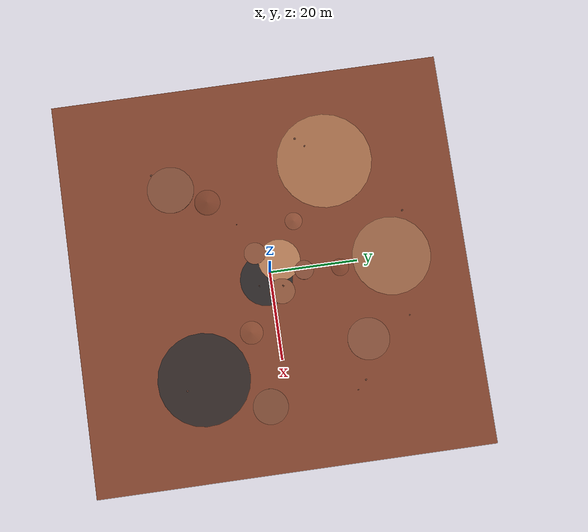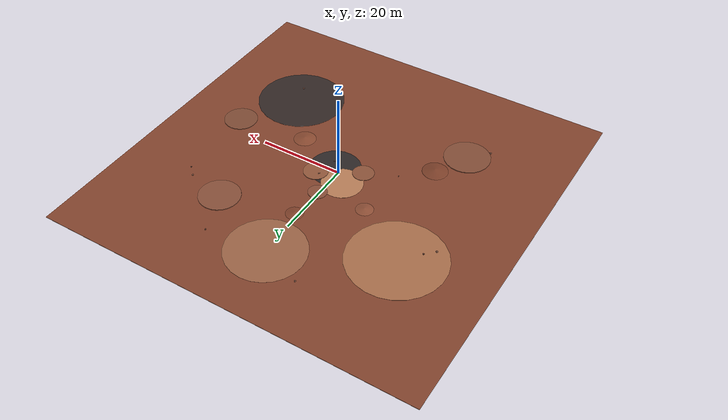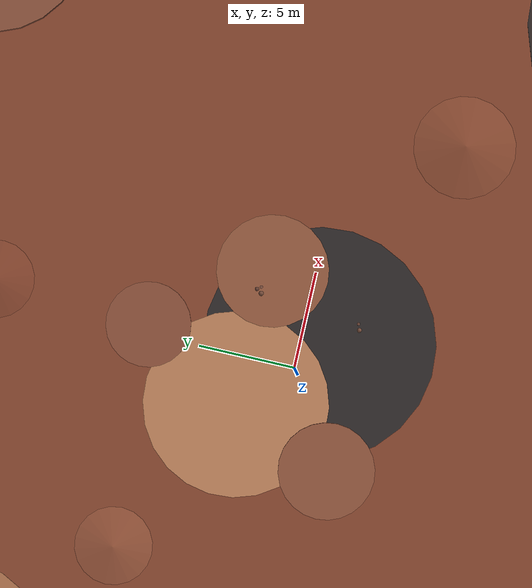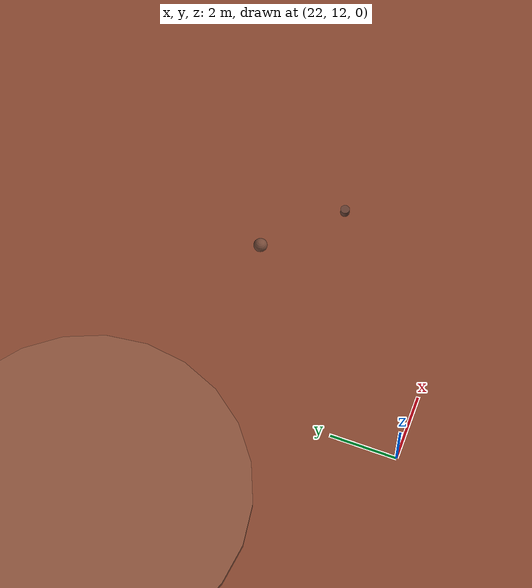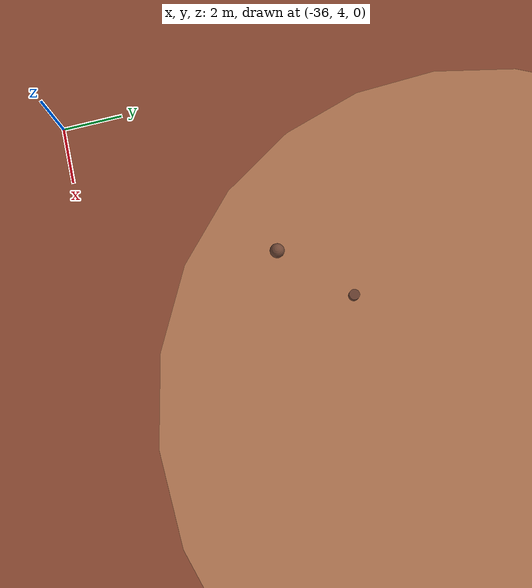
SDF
<sdf version="1.6">
  <world name="mars_world">
    <gravity>0 0 -3.72</gravity>

    <include>
      <uri>model://sun</uri>
    </include>

    <scene>
      <ambient>0.26 0.15 0.12 1</ambient>
      <background>0.18 0.11 0.09 1</background>
      <shadows>true</shadows>
      <fog>
        <type>linear</type>
        <color>0.30 0.18 0.14 1</color>
        <start>6.0</start>
        <end>42.0</end>
        <density>0.01</density>
      </fog>
      <sky>
        <clouds>false</clouds>
      </sky>
    </scene>

    <physics name="mars_physics" type="ode">
      <real_time_factor>1.0</real_time_factor>
      <max_step_size>0.001</max_step_size>
      <real_time_update_rate>1000</real_time_update_rate>
    </physics>

    <model name="mars_terrain_base">
      <static>true</static>
      <pose>0 0 -0.08 0 0 0</pose>
      <link name="terrain_link">
        <collision name="collision">
          <geometry>
            <box>
              <size>90 90 0.12</size>
            </box>
          </geometry>
          <surface>
            <friction>
              <ode>
                <mu>1.2</mu>
                <mu2>1.2</mu2>
              </ode>
            </friction>
          </surface>
        </collision>
        <visual name="visual">
          <geometry>
            <box>
              <size>90 90 0.12</size>
            </box>
          </geometry>
          <material>
            <ambient>0.34 0.18 0.12 1</ambient>
            <diffuse>0.52 0.27 0.18 1</diffuse>
            <specular>0.02 0.02 0.02 1</specular>
          </material>
        </visual>
      </link>
    </model>

    <model name="dune_mound_01">
      <static>true</static>
      <pose>-11 7 -7.9 0 0 0</pose>
      <link name="link">
        <collision name="c"><geometry><sphere><radius>8.2</radius></sphere></geometry></collision>
        <visual name="v"><geometry><sphere><radius>8.2</radius></sphere></geometry><material><diffuse>0.56 0.31 0.21 1</diffuse></material></visual>
      </link>
    </model>

    <model name="dune_mound_02">
      <static>true</static>
      <pose>13 -6 -8.5 0 0 0</pose>
      <link name="link">
        <collision name="c"><geometry><sphere><radius>8.9</radius></sphere></geometry></collision>
        <visual name="v"><geometry><sphere><radius>8.9</radius></sphere></geometry><material><diffuse>0.54 0.29 0.19 1</diffuse></material></visual>
      </link>
    </model>

    <model name="dune_mound_03">
      <static>true</static>
      <pose>1 16 -9.7 0 0 0</pose>
      <link name="link">
        <collision name="c"><geometry><sphere><radius>10.0</radius></sphere></geometry></collision>
        <visual name="v"><geometry><sphere><radius>10.0</radius></sphere></geometry><material><diffuse>0.51 0.26 0.17 1</diffuse></material></visual>
      </link>
    </model>

    <model name="dune_mound_04">
      <static>true</static>
      <pose>-18 -12 -8.7 0 0 0</pose>
      <link name="link">
        <collision name="c"><geometry><sphere><radius>9.2</radius></sphere></geometry></collision>
        <visual name="v"><geometry><sphere><radius>9.2</radius></sphere></geometry><material><diffuse>0.49 0.25 0.16 1</diffuse></material></visual>
      </link>
    </model>

    <light name="mars_key" type="directional">
      <cast_shadows>true</cast_shadows>
      <pose>0 0 60 0.35 -0.1 0.0</pose>
      <diffuse>0.80 0.46 0.33 1</diffuse>
      <specular>0.05 0.03 0.02 1</specular>
      <attenuation>
        <range>500</range>
        <constant>0.97</constant>
        <linear>0.004</linear>
        <quadratic>0.0002</quadratic>
      </attenuation>
      <direction>-0.55 0.20 -0.82</direction>
    </light>

    <light name="mars_fill" type="directional">
      <cast_shadows>false</cast_shadows>
      <pose>0 0 35 0.15 0.05 0.0</pose>
      <diffuse>0.14 0.08 0.06 1</diffuse>
      <specular>0 0 0 1</specular>
      <attenuation>
        <range>500</range>
        <constant>1.0</constant>
        <linear>0.0</linear>
        <quadratic>0.0</quadratic>
      </attenuation>
      <direction>-0.20 0.05 -1.0</direction>
    </light>

    <model name="basalt_patch_01">
      <static>true</static>
      <pose>1.5 -1.0 -0.010 0 0 0.2</pose>
      <link name="link">
        <collision name="c"><geometry><cylinder><radius>6.0</radius><length>0.02</length></cylinder></geometry></collision>
        <visual name="v"><geometry><cylinder><radius>6.0</radius><length>0.02</length></cylinder></geometry><material><diffuse>0.18 0.16 0.16 1</diffuse></material></visual>
      </link>
    </model>

    <model name="dust_patch_01">
      <static>true</static>
      <pose>-2.5 2.5 -0.009 0 0 0.45</pose>
      <link name="link">
        <collision name="c"><geometry><cylinder><radius>4.8</radius><length>0.02</length></cylinder></geometry></collision>
        <visual name="v"><geometry><cylinder><radius>4.8</radius><length>0.02</length></cylinder></geometry><material><diffuse>0.73 0.50 0.35 1</diffuse></material></visual>
      </link>
    </model>

    <model name="crater_01_rim">
      <static>true</static>
      <pose>4.6 2.2 0.05 0 0 0</pose>
      <link name="link">
        <collision name="c"><geometry><cylinder><radius>2.9</radius><length>0.16</length></cylinder></geometry></collision>
        <visual name="v"><geometry><cylinder><radius>2.9</radius><length>0.16</length></cylinder></geometry><material><diffuse>0.58 0.35 0.24 1</diffuse></material></visual>
      </link>
    </model>

    <model name="crater_01_floor">
      <static>true</static>
      <pose>4.6 2.2 -0.06 0 0 0</pose>
      <link name="link">
        <collision name="c"><geometry><cylinder><radius>2.25</radius><length>0.06</length></cylinder></geometry></collision>
        <visual name="v"><geometry><cylinder><radius>2.25</radius><length>0.06</length></cylinder></geometry><material><diffuse>0.24 0.17 0.14 1</diffuse></material></visual>
      </link>
    </model>

    <model name="crater_02_rim">
      <static>true</static>
      <pose>-4.8 -2.8 0.045 0 0 0</pose>
      <link name="link">
        <collision name="c"><geometry><cylinder><radius>2.5</radius><length>0.14</length></cylinder></geometry></collision>
        <visual name="v"><geometry><cylinder><radius>2.5</radius><length>0.14</length></cylinder></geometry><material><diffuse>0.56 0.33 0.23 1</diffuse></material></visual>
      </link>
    </model>

    <model name="crater_02_floor">
      <static>true</static>
      <pose>-4.8 -2.8 -0.055 0 0 0</pose>
      <link name="link">
        <collision name="c"><geometry><cylinder><radius>1.95</radius><length>0.06</length></cylinder></geometry></collision>
        <visual name="v"><geometry><cylinder><radius>1.95</radius><length>0.06</length></cylinder></geometry><material><diffuse>0.23 0.16 0.13 1</diffuse></material></visual>
      </link>
    </model>

    <model name="crater_03_rim">
      <static>true</static>
      <pose>0.5 7.8 0.040 0 0 0</pose>
      <link name="link">
        <collision name="c"><geometry><cylinder><radius>2.2</radius><length>0.12</length></cylinder></geometry></collision>
        <visual name="v"><geometry><cylinder><radius>2.2</radius><length>0.12</length></cylinder></geometry><material><diffuse>0.54 0.31 0.22 1</diffuse></material></visual>
      </link>
    </model>

    <model name="crater_03_floor">
      <static>true</static>
      <pose>0.5 7.8 -0.050 0 0 0</pose>
      <link name="link">
        <collision name="c"><geometry><cylinder><radius>1.65</radius><length>0.05</length></cylinder></geometry></collision>
        <visual name="v"><geometry><cylinder><radius>1.65</radius><length>0.05</length></cylinder></geometry><material><diffuse>0.23 0.16 0.13 1</diffuse></material></visual>
      </link>
    </model>

    <model name="boulder_cluster_left_01">
      <static>true</static>
      <pose>3.5 2.6 0 0 0 0.5</pose>
      <link name="link">
        <collision name="c1"><pose>-0.18 0.00 0.12 0 0 0</pose><geometry><sphere><radius>0.13</radius></sphere></geometry></collision>
        <collision name="c2"><pose>0.10 0.14 0.10 0 0 0</pose><geometry><sphere><radius>0.11</radius></sphere></geometry></collision>
        <collision name="c3"><pose>0.14 -0.10 0.08 0 0 0</pose><geometry><cylinder><radius>0.08</radius><length>0.16</length></cylinder></geometry></collision>
        <visual name="v1"><pose>-0.18 0.00 0.12 0 0 0</pose><geometry><sphere><radius>0.13</radius></sphere></geometry><material><diffuse>0.44 0.28 0.21 1</diffuse></material></visual>
        <visual name="v2"><pose>0.10 0.14 0.10 0 0 0</pose><geometry><sphere><radius>0.11</radius></sphere></geometry><material><diffuse>0.39 0.24 0.19 1</diffuse></material></visual>
        <visual name="v3"><pose>0.14 -0.10 0.08 0 0 0</pose><geometry><cylinder><radius>0.08</radius><length>0.16</length></cylinder></geometry><material><diffuse>0.47 0.30 0.23 1</diffuse></material></visual>
      </link>
    </model>

    <model name="boulder_cluster_right_01">
      <static>true</static>
      <pose>2.8 -2.8 0 0 0 -0.2</pose>
      <link name="link">
        <collision name="c1"><pose>-0.16 -0.06 0.11 0 0 0</pose><geometry><sphere><radius>0.12</radius></sphere></geometry></collision>
        <collision name="c2"><pose>0.12 0.11 0.08 0 0 0</pose><geometry><cylinder><radius>0.08</radius><length>0.14</length></cylinder></geometry></collision>
        <visual name="v1"><pose>-0.16 -0.06 0.11 0 0 0</pose><geometry><sphere><radius>0.12</radius></sphere></geometry><material><diffuse>0.45 0.29 0.22 1</diffuse></material></visual>
        <visual name="v2"><pose>0.12 0.11 0.08 0 0 0</pose><geometry><cylinder><radius>0.08</radius><length>0.14</length></cylinder></geometry><material><diffuse>0.40 0.25 0.20 1</diffuse></material></visual>
      </link>
    </model>

    <model name="far_obstacle_01">
      <static>true</static>
      <pose>-12 -6 0.10 0 0 0</pose>
      <link name="link"><collision name="c"><geometry><sphere><radius>0.14</radius></sphere></geometry></collision><visual name="v"><geometry><sphere><radius>0.14</radius></sphere></geometry><material><diffuse>0.41 0.25 0.19 1</diffuse></material></visual></link>
    </model>

    <!-- Far-field terrain variation so zoomed-out view is not plain -->
    <model name="basalt_patch_far_01">
      <static>true</static>
      <pose>22 -18 -0.011 0 0 0.2</pose>
      <link name="link">
        <collision name="c"><geometry><cylinder><radius>10.5</radius><length>0.02</length></cylinder></geometry></collision>
        <visual name="v"><geometry><cylinder><radius>10.5</radius><length>0.02</length></cylinder></geometry><material><diffuse>0.20 0.16 0.15 1</diffuse></material></visual>
      </link>
    </model>

    <model name="dust_patch_far_01">
      <static>true</static>
      <pose>-24 16 -0.010 0 0 -0.35</pose>
      <link name="link">
        <collision name="c"><geometry><cylinder><radius>11.0</radius><length>0.02</length></cylinder></geometry></collision>
        <visual name="v"><geometry><cylinder><radius>11.0</radius><length>0.02</length></cylinder></geometry><material><diffuse>0.67 0.44 0.30 1</diffuse></material></visual>
      </link>
    </model>

    <model name="dust_patch_far_02">
      <static>true</static>
      <pose>0 28 -0.010 0 0 0.0</pose>
      <link name="link">
        <collision name="c"><geometry><cylinder><radius>9.0</radius><length>0.02</length></cylinder></geometry></collision>
        <visual name="v"><geometry><cylinder><radius>9.0</radius><length>0.02</length></cylinder></geometry><material><diffuse>0.62 0.40 0.28 1</diffuse></material></visual>
      </link>
    </model>

    <!-- Additional distant crater rings -->
    <model name="crater_far_01_rim">
      <static>true</static>
      <pose>18 20 0.06 0 0 0</pose>
      <link name="link"><collision name="c"><geometry><cylinder><radius>4.8</radius><length>0.18</length></cylinder></geometry></collision><visual name="v"><geometry><cylinder><radius>4.8</radius><length>0.18</length></cylinder></geometry><material><diffuse>0.54 0.32 0.23 1</diffuse></material></visual></link>
    </model>

    <model name="crater_far_01_floor">
      <static>true</static>
      <pose>18 20 -0.08 0 0 0</pose>
      <link name="link"><collision name="c"><geometry><cylinder><radius>3.9</radius><length>0.08</length></cylinder></geometry></collision><visual name="v"><geometry><cylinder><radius>3.9</radius><length>0.08</length></cylinder></geometry><material><diffuse>0.23 0.16 0.13 1</diffuse></material></visual></link>
    </model>

    <model name="crater_far_02_rim">
      <static>true</static>
      <pose>-22 -20 0.06 0 0 0</pose>
      <link name="link"><collision name="c"><geometry><cylinder><radius>5.4</radius><length>0.20</length></cylinder></geometry></collision><visual name="v"><geometry><cylinder><radius>5.4</radius><length>0.20</length></cylinder></geometry><material><diffuse>0.52 0.31 0.22 1</diffuse></material></visual></link>
    </model>

    <model name="crater_far_02_floor">
      <static>true</static>
      <pose>-22 -20 -0.09 0 0 0</pose>
      <link name="link"><collision name="c"><geometry><cylinder><radius>4.3</radius><length>0.10</length></cylinder></geometry></collision><visual name="v"><geometry><cylinder><radius>4.3</radius><length>0.10</length></cylinder></geometry><material><diffuse>0.22 0.15 0.12 1</diffuse></material></visual></link>
    </model>

    <model name="crater_far_03_rim">
      <static>true</static>
      <pose>30 -4 0.05 0 0 0</pose>
      <link name="link"><collision name="c"><geometry><cylinder><radius>4.0</radius><length>0.16</length></cylinder></geometry></collision><visual name="v"><geometry><cylinder><radius>4.0</radius><length>0.16</length></cylinder></geometry><material><diffuse>0.50 0.30 0.21 1</diffuse></material></visual></link>
    </model>

    <model name="crater_far_03_floor">
      <static>true</static>
      <pose>30 -4 -0.07 0 0 0</pose>
      <link name="link"><collision name="c"><geometry><cylinder><radius>3.2</radius><length>0.08</length></cylinder></geometry></collision><visual name="v"><geometry><cylinder><radius>3.2</radius><length>0.08</length></cylinder></geometry><material><diffuse>0.24 0.17 0.13 1</diffuse></material></visual></link>
    </model>

    <!-- Perimeter rock belts create natural routes beyond spawn area -->
    <model name="perimeter_rock_01">
      <static>true</static>
      <pose>-30 10 0.18 0 0 0</pose>
      <link name="link"><collision name="c"><geometry><sphere><radius>0.24</radius></sphere></geometry></collision><visual name="v"><geometry><sphere><radius>0.24</radius></sphere></geometry><material><diffuse>0.44 0.28 0.21 1</diffuse></material></visual></link>
    </model>

    <model name="perimeter_rock_02">
      <static>true</static>
      <pose>-28 12 0.14 0 0 0</pose>
      <link name="link"><collision name="c"><geometry><cylinder><radius>0.17</radius><length>0.25</length></cylinder></geometry></collision><visual name="v"><geometry><cylinder><radius>0.17</radius><length>0.25</length></cylinder></geometry><material><diffuse>0.40 0.24 0.18 1</diffuse></material></visual></link>
    </model>

    <model name="perimeter_rock_03">
      <static>true</static>
      <pose>27 18 0.16 0 0 0</pose>
      <link name="link"><collision name="c"><geometry><sphere><radius>0.21</radius></sphere></geometry></collision><visual name="v"><geometry><sphere><radius>0.21</radius></sphere></geometry><material><diffuse>0.46 0.29 0.22 1</diffuse></material></visual></link>
    </model>

    <model name="perimeter_rock_04">
      <static>true</static>
      <pose>29 16 0.12 0 0 0</pose>
      <link name="link"><collision name="c"><geometry><cylinder><radius>0.14</radius><length>0.22</length></cylinder></geometry></collision><visual name="v"><geometry><cylinder><radius>0.14</radius><length>0.22</length></cylinder></geometry><material><diffuse>0.39 0.24 0.19 1</diffuse></material></visual></link>
    </model>

    <model name="perimeter_rock_05">
      <static>true</static>
      <pose>-26 -24 0.17 0 0 0</pose>
      <link name="link"><collision name="c"><geometry><sphere><radius>0.23</radius></sphere></geometry></collision><visual name="v"><geometry><sphere><radius>0.23</radius></sphere></geometry><material><diffuse>0.43 0.27 0.21 1</diffuse></material></visual></link>
    </model>

    <model name="perimeter_rock_06">
      <static>true</static>
      <pose>24 -22 0.15 0 0 0</pose>
      <link name="link"><collision name="c"><geometry><sphere><radius>0.20</radius></sphere></geometry></collision><visual name="v"><geometry><sphere><radius>0.20</radius></sphere></geometry><material><diffuse>0.45 0.28 0.22 1</diffuse></material></visual></link>
    </model>

    <model name="perimeter_rock_07">
      <static>true</static>
      <pose>14 30 0.14 0 0 0</pose>
      <link name="link"><collision name="c"><geometry><cylinder><radius>0.16</radius><length>0.22</length></cylinder></geometry></collision><visual name="v"><geometry><cylinder><radius>0.16</radius><length>0.22</length></cylinder></geometry><material><diffuse>0.41 0.25 0.19 1</diffuse></material></visual></link>
    </model>

    <model name="perimeter_rock_08">
      <static>true</static>
      <pose>-10 32 0.16 0 0 0</pose>
      <link name="link"><collision name="c"><geometry><sphere><radius>0.22</radius></sphere></geometry></collision><visual name="v"><geometry><sphere><radius>0.22</radius></sphere></geometry><material><diffuse>0.42 0.26 0.20 1</diffuse></material></visual></link>
    </model>
  </world>
</sdf>
